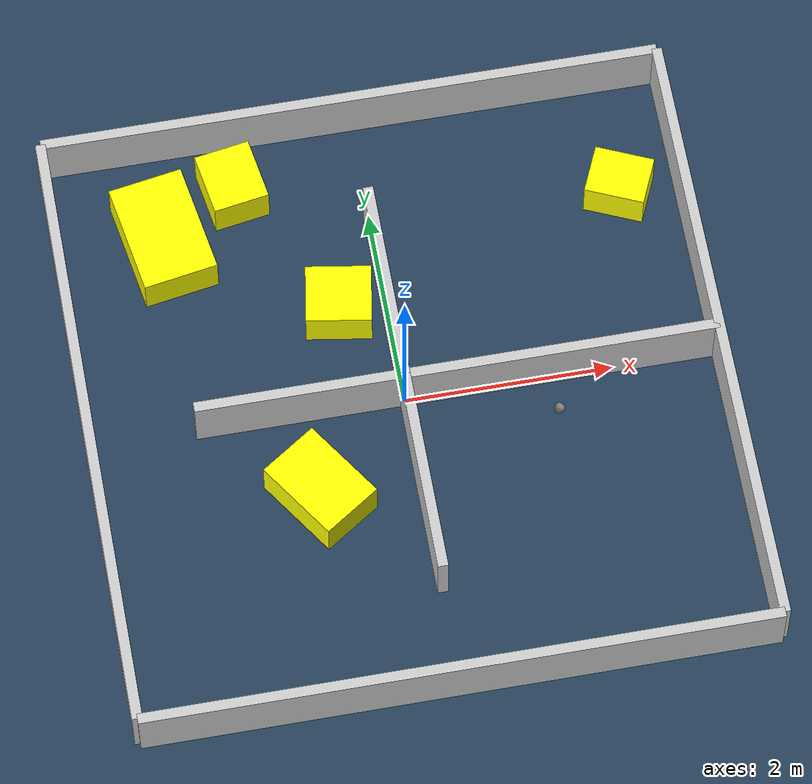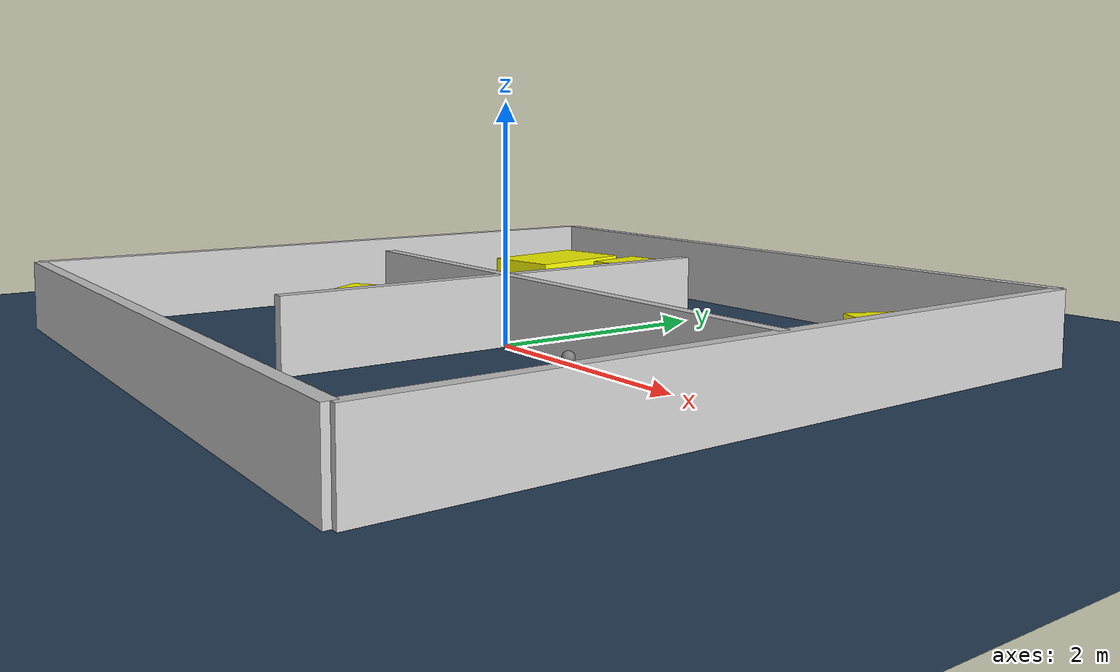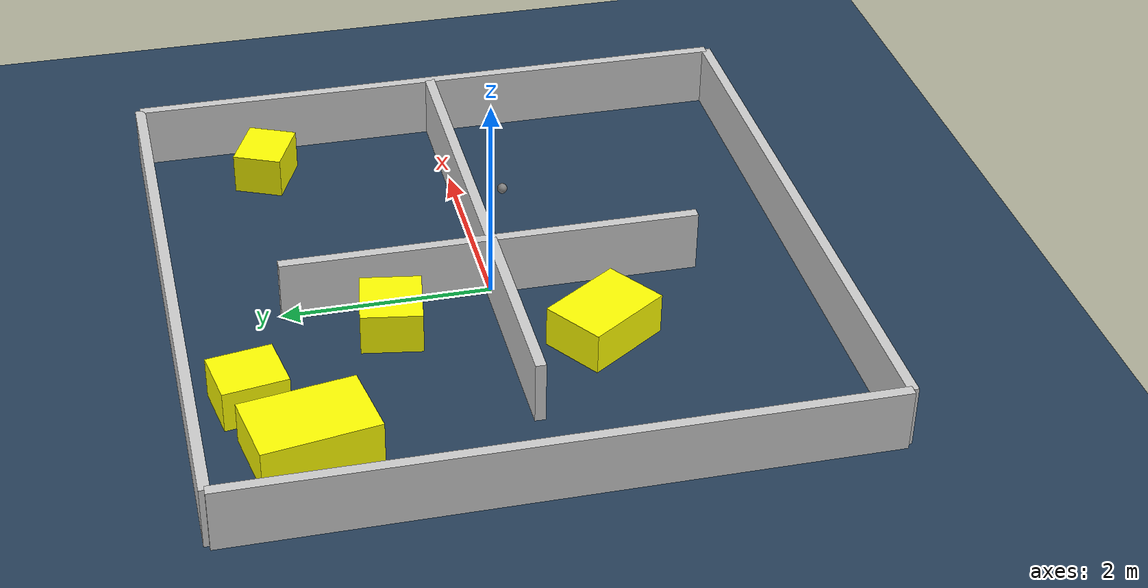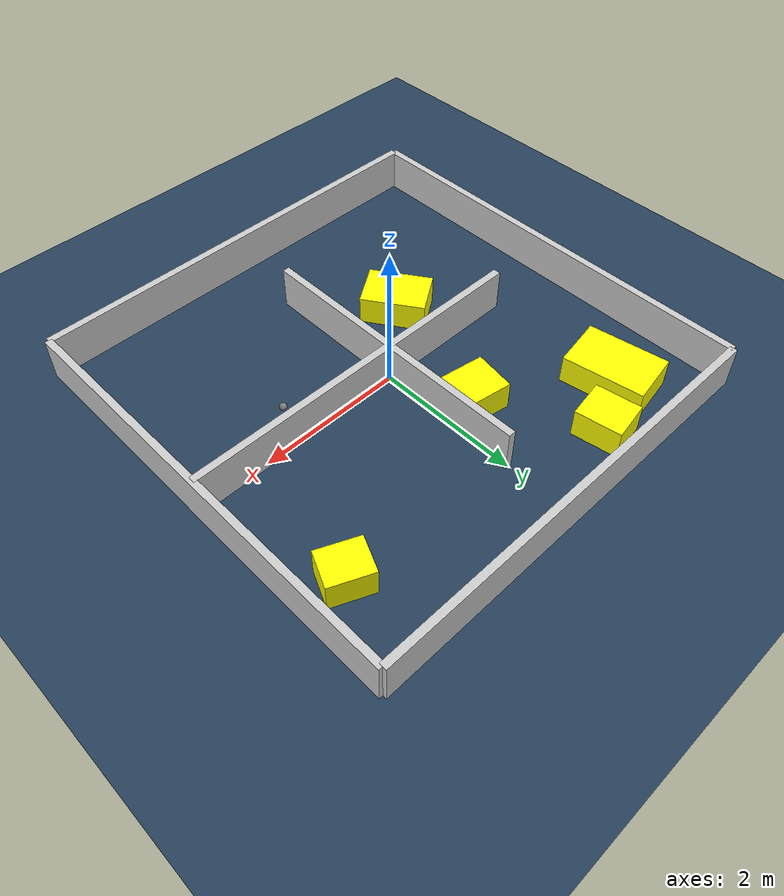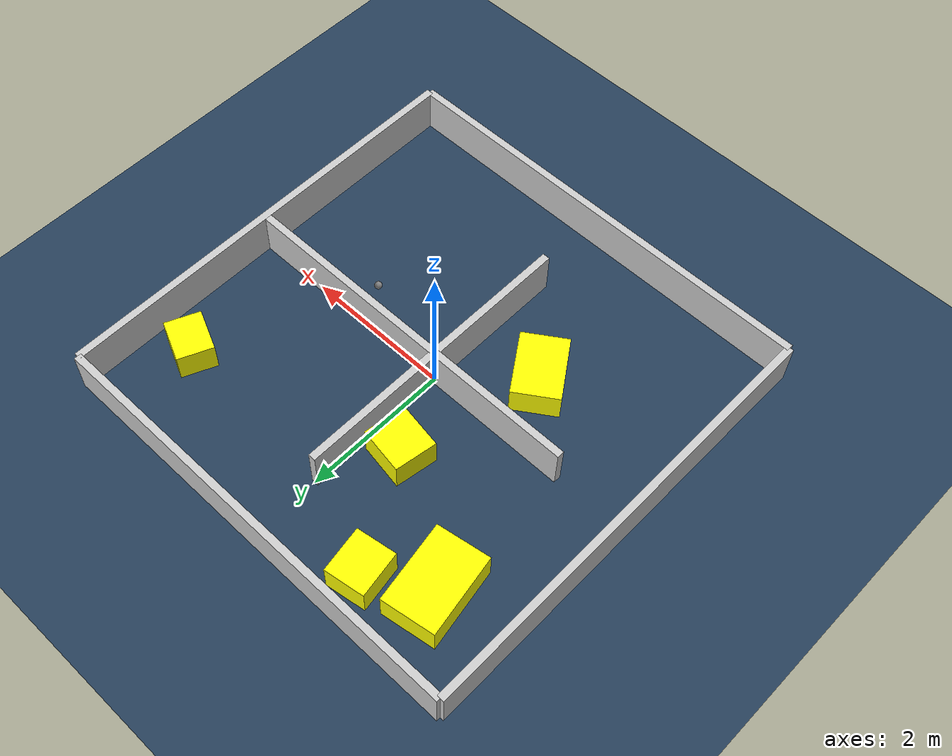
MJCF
<?xml version="1.0" ?>
<mujoco model="generated_environment">
  <option timestep="0.01" integrator="RK4" cone="elliptic"/>
  <default>
    <geom density="1"/>
  </default>
  <asset>
    <texture builtin="gradient" height="3072" rgb1="0.3 0.5 0.7" rgb2="0 0 0" type="skybox" width="512"/>
    <texture builtin="checker" height="300" mark="edge" markrgb="0.8 0.8 0.8" name="groundplane" rgb1="0.2 0.3 0.4" rgb2="0.1 0.2 0.3" type="2d" width="300"/>
    <material name="groundplane" reflectance="0.2" texrepeat="5 5" texture="groundplane" texuniform="true"/>
    <material name="robot" rgba="0.0 1.0 0.0 1"/>
  </asset>
  <worldbody>
    <light dir="0 0 -1" directional="true" pos="0 0 1.5"/>
    <geom condim="4" friction="1.0 0.005 0.001" material="groundplane" name="floor" size="0 0 0.05" type="plane"/>
    <body name="walls">
      <geom name="wall_1" condim="4" pos="-3.0 0.0 0.3" rgba="0.800000011920929 0.800000011920929 0.800000011920929 1.0" size="0.05 3.0 0.3" type="box"/>
      <geom name="wall_2" condim="4" pos="3.0 0.0 0.3" rgba="0.800000011920929 0.800000011920929 0.800000011920929 1.0" size="0.05 3.0 0.3" type="box"/>
      <geom name="wall_3" condim="4" pos="0.0 -3.0 0.3" rgba="0.800000011920929 0.800000011920929 0.800000011920929 1.0" size="3.0 0.05 0.3" type="box"/>
      <geom name="wall_4" condim="4" pos="0.0 3.0 0.3" rgba="0.800000011920929 0.800000011920929 0.800000011920929 1.0" size="3.0 0.05 0.3" type="box"/>
      <geom name="wall_5" condim="4" pos="1.5 0.0 0.3" rgba="0.800000011920929 0.800000011920929 0.800000011920929 1.0" size="1.5 0.05 0.3" type="box"/>
      <geom name="wall_6" condim="4" pos="-1.0 0.0 0.3" rgba="0.800000011920929 0.800000011920929 0.800000011920929 1.0" size="1.0 0.05 0.3" type="box"/>
      <geom name="wall_7" condim="4" pos="0.0 -1.0 0.3" rgba="0.800000011920929 0.800000011920929 0.800000011920929 1.0" size="0.05 1.0 0.3" type="box"/>
      <geom name="wall_8" condim="4" pos="0.0 1.0 0.3" rgba="0.800000011920929 0.800000011920929 0.800000011920929 1.0" size="0.05 1.0 0.3" type="box"/>
    </body>
    <body name="robot">
      <joint name="joint_x" type="slide" pos="0 0 0" axis="1 0 0"/>
      <joint name="joint_y" type="slide" pos="0 0 0" axis="0 1 0"/>
      <geom name="robot" type="sphere" pos="1.4006682268936532 -0.4212618631655247 0.2" size="0.05" mass="5." friction="1.0 0.005 0.0001" condim="4"/>
      <site name="sensor_ball"/>
    </body>
    <body name="obstacle_1_movable">
      <geom name="obstacle_1_movable" condim="4" pos="-1.9800894969550527 2.013263531751402 0.2" euler="0 0 189.54658800916008" friction="1.0 0.005 0.001" rgba="1 1 0 1" size="0.3628185962995124 0.5483747768171288 0.2" type="box" mass="0.1"/>
      <joint type="free"/>
    </body>
    <body name="obstacle_2_movable">
      <geom name="obstacle_2_movable" condim="4" pos="2.4095015391864654 1.8154004141549773 0.2" euler="0 0 246.05167261715528" friction="1.0 0.005 0.001" rgba="1 1 0 1" size="0.24119466033132492 0.28980111359091026 0.2" type="box" mass="0.1"/>
      <joint type="free"/>
    </body>
    <body name="obstacle_3_movable">
      <geom name="obstacle_3_movable" condim="4" pos="-1.246626713385232 2.4509574506474414 0.2" euler="0 0 99.36116423636317" friction="1.0 0.005 0.001" rgba="1 1 0 1" size="0.3085277896333961 0.27162740074303315 0.2" type="box" mass="0.1"/>
      <joint type="free"/>
    </body>
    <body name="obstacle_4_movable">
      <geom name="obstacle_4_movable" condim="4" pos="-0.9518218387146935 -0.8480520958600537 0.2" euler="0 0 303.90800615031196" friction="1.0 0.005 0.001" rgba="1 1 0 1" size="0.4392261195863595 0.31303669792312505 0.2" type="box" mass="0.1"/>
      <joint type="free"/>
    </body>
    <body name="obstacle_5_movable">
      <geom name="obstacle_5_movable" condim="4" pos="-0.4528957178763524 1.0355451312289548 0.2" euler="0 0 260.90360102338815" friction="1.0 0.005 0.001" rgba="1 1 0 1" size="0.287834575221616 0.31372158387186005 0.2" type="box" mass="0.1"/>
      <joint type="free"/>
    </body>
  </worldbody>
  <actuator>
    <motor name="actuator_x" joint="joint_x" gear="1" ctrlrange="-1 1"/>
    <motor name="actuator_y" joint="joint_y" gear="1" ctrlrange="-1 1"/>
  </actuator>
</mujoco>
